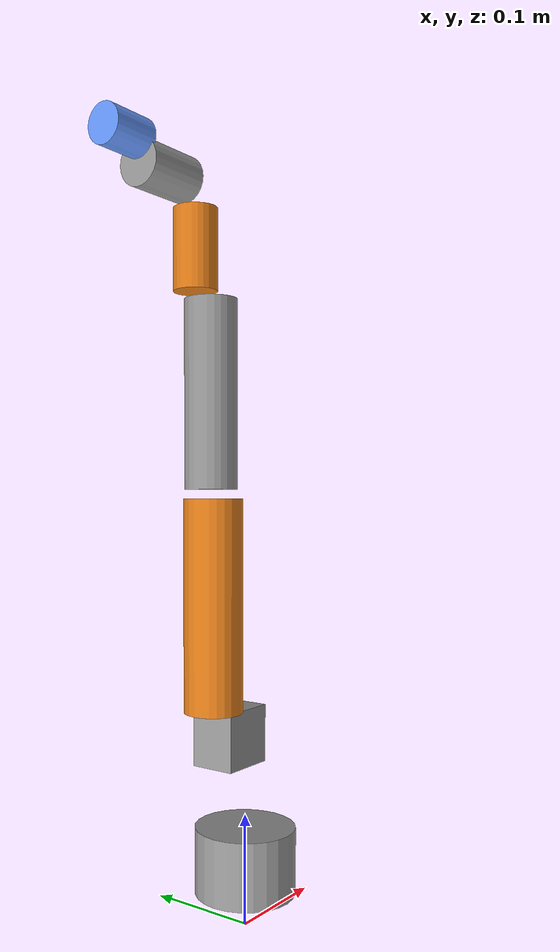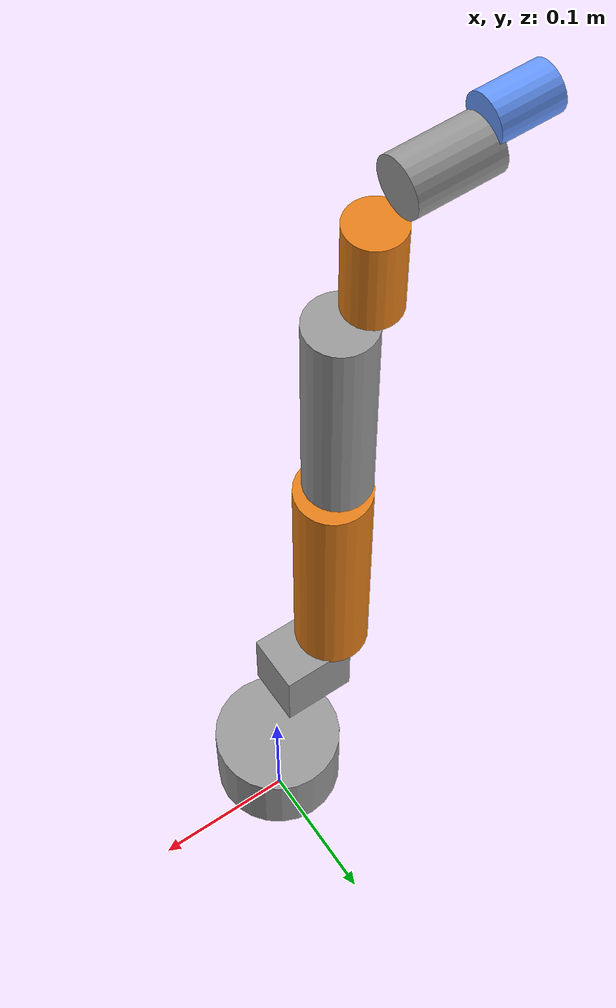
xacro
<?xml version="1.0" ?>
<robot name="me6_robot" xmlns:xacro="http://www.ros.org/wiki/xacro">

    <link name="world"/>
    <link name="dummy_link"/>
    <link name="base_link">
        <inertial>
            <origin xyz="-0.0240568795993814 0.00375533156407527 0.0319345452713943" rpy="0 0 0"/>
            <mass value="0.285212529609956"/>
            <inertia ixx="0.000396422919712692" ixy="-2.45771742761344E-06" ixz="-4.3086536609151E-05"
                     iyy="0.000694067773935387" iyz="-1.70368663919635E-06" izz="0.000881589559792122"/>
        </inertial>
        <visual>
            <origin xyz="0 0 0.03" rpy="0 0 0"/>
            <geometry>
                <cylinder radius="0.045" length="0.06"/>
            </geometry>
            <material name="grey">
                <color rgba="0.6 0.6 0.6 1"/>
            </material>
        </visual>
        <collision>
            <origin xyz="0 0 0" rpy="0 0 0"/>
            <geometry>
                <mesh filename="package://e6_description/meshes/me6/base_link.STL"/>
            </geometry>
        </collision>
    </link>

    <joint name="world_joint" type="fixed">
        <origin xyz="0 0 0.03" rpy="0 0 0"/>
        <parent link="world"/>
        <child link="dummy_link"/>
    </joint>
    <joint name="dummy_joint" type="fixed">
        <parent link="dummy_link"/>
        <child link="base_link"/>
    </joint>

    <link name="Link1">
        <inertial>
            <origin xyz="-0.0083034891135278 0.000169963422442479 0.0273090165667047" rpy="0 0 0"/>
            <mass value="0.0905534651015844"/>
            <inertia ixx="0.000126000179432565" ixy="3.82915686953423E-07" ixz="2.6110576023655E-05"
                     iyy="0.000106769415321957" iyz="-2.94192272889944E-07" izz="0.000110954758888466"/>
        </inertial>
        <visual>
            <origin xyz="-0.023 0 0.02" rpy="0 0 0"/>
            <geometry>
                <box size="0.05 0.04 0.05"/>
            </geometry>
            <material name="grey">
                <color rgba="0.6 0.6 0.6 1"/>
            </material>
        </visual>
        <collision>
            <origin xyz="0 0 0" rpy="0 0 0"/>
            <geometry>
                <mesh filename="package://e6_description/meshes/me6/Link1.STL"/>
            </geometry>
        </collision>
    </link>
    <joint name="joint1" type="revolute">
        <origin xyz="0 0 0.1268" rpy="0 0 0"/>
        <parent link="base_link"/>
        <child link="Link1"/>
        <axis xyz="0 0 1"/>
        <limit lower="-6.27" upper="6.27" effort="300" velocity="300"/>
    </joint>

    <link name="Link2">
        <inertial>
            <origin xyz="-3.08219150776858E-06 0.0879305908719406 0.0388340121175632" rpy="0 0 0"/>
            <mass value="0.262143169591665"/>
            <inertia ixx="0.00151705147157064" ixy="-9.05783800425971E-08" ixz="-2.30358806459891E-08"
                     iyy="0.000184651484640178" iyz="5.92489195475674E-06" izz="0.00160256161333827"/>
        </inertial>
        <visual>
            <origin xyz="0 0.094 0" rpy="1.5708 0 0"/>
            <geometry>
                <cylinder radius="0.025" length="0.18"/>
            </geometry>
            <material name="orange">
                <color rgba="0.9 0.5 0.1 1"/>
            </material>
        </visual>
        <collision>
            <origin xyz="0 0 0" rpy="0 0 0"/>
            <geometry>
                <mesh filename="package://e6_description/meshes/me6/Link2.STL"/>
            </geometry>
        </collision>
    </link>
    <joint name="joint2" type="revolute">
        <origin xyz="-0.046 0 0.04" rpy="1.5708 0 -1.5708"/>
        <parent link="Link1"/>
        <child link="Link2"/>
        <axis xyz="0 0 1"/>
        <limit lower="-2.356" upper="2.356" effort="300" velocity="300"/>
    </joint>

    <link name="Link3">
        <inertial>
            <origin xyz="0.000287552185448503 0.071655088852445 -0.0471165778156417" rpy="0 0 0"/>
            <mass value="0.165777554463868"/>
            <inertia ixx="0.000830428352662996" ixy="2.8181042521152E-06" ixz="-9.46588589577167E-07"
                     iyy="0.000136357822793152" iyz="3.34896030109504E-05" izz="0.000875008990596281"/>
        </inertial>
        <visual>
            <origin xyz="0 0.08 0" rpy="1.5708 0 0"/>
            <geometry>
                <cylinder radius="0.022" length="0.155"/>
            </geometry>
            <material name="grey">
                <color rgba="0.6 0.6 0.6 1"/>
            </material>
        </visual>
        <collision>
            <origin xyz="0 0 0" rpy="0 0 0"/>
            <geometry>
                <mesh filename="package://e6_description/meshes/me6/Link3.STL"/>
            </geometry>
        </collision>
    </link>
    <joint name="joint3" type="revolute">
        <origin xyz="0 0.18906 0.003" rpy="0 0 0"/>
        <parent link="Link2"/>
        <child link="Link3"/>
        <axis xyz="0 0 1"/>
        <limit lower="-2.6878" upper="2.6878" effort="300" velocity="300"/>
    </joint>

    <link name="Link4">
        <inertial>
            <origin xyz="4.09285774923343E-06 0.00868445353374203 0.0236778972827499" rpy="0 0 0"/>
            <mass value="0.0513325001478492"/>
            <inertia ixx="4.01013411471145E-05" ixy="-1.20578032972286E-09" ixz="-4.45580261969494E-09"
                     iyy="4.5290271173066E-05" iyz="-1.00105786014305E-05" izz="4.79740476320818E-05"/>
        </inertial>
        <visual>
            <origin xyz="0 0.033 0.015" rpy="1.5708 0 0"/>
            <geometry>
                <cylinder radius="0.018" length="0.065"/>
            </geometry>
            <material name="orange">
                <color rgba="0.9 0.5 0.1 1"/>
            </material>
        </visual>
        <collision>
            <origin xyz="0 0 0" rpy="0 0 0"/>
            <geometry>
                <mesh filename="package://e6_description/meshes/me6/Link4.STL"/>
            </geometry>
        </collision>
    </link>
    <joint name="joint4" type="revolute">
        <origin xyz="0 0.16 0.005" rpy="0 0 0"/>
        <parent link="Link3"/>
        <child link="Link4"/>
        <axis xyz="0 0 1"/>
        <limit lower="-2.7925" upper="2.7925" effort="300" velocity="300"/>
    </joint>

    <link name="Link5">
        <inertial>
            <origin xyz="0.0105483555263245 3.64597044475367E-06 0.0262055886148362" rpy="0 0 0"/>
            <mass value="0.0698692996111581"/>
            <inertia ixx="5.60115215664426E-05" ixy="-7.74590413803E-09" ixz="8.25739718196742E-06"
                     iyy="5.44754597177232E-05" iyz="2.95354323871408E-09" izz="6.26975970041226E-05"/>
        </inertial>
        <visual>
            <origin xyz="-0.023 0 0.017" rpy="0 1.5708 0"/>
            <geometry>
                <cylinder radius="0.018" length="0.055"/>
            </geometry>
            <material name="grey">
                <color rgba="0.6 0.6 0.6 1"/>
            </material>
        </visual>
        <collision>
            <origin xyz="0 0 0" rpy="0 0 0"/>
            <geometry>
                <mesh filename="package://e6_description/meshes/me6/Link5.STL"/>
            </geometry>
        </collision>
    </link>
    <joint name="joint5" type="revolute">
        <origin xyz="0 0.067 0.032" rpy="-1.5708 1.5708 0"/>
        <parent link="Link4"/>
        <child link="Link5"/>
        <axis xyz="0 0 1"/>
        <limit lower="-3.0194" upper="3.0194" effort="300" velocity="300"/>
    </joint>

    <link name="Link6">
        <inertial>
            <origin xyz="-9.26807198336826E-06 0.00202791129000202 0.0111078385958137" rpy="0 0 0"/>
            <mass value="0.0200378152167263"/>
            <inertia ixx="7.30357563767904E-06" ixy="2.93853237811271E-09" ixz="2.10157561923958E-10"
                     iyy="6.84457889267137E-06" iyz="-3.06988248779752E-08" izz="1.29091396053918E-05"/>
        </inertial>
        <visual>
            <origin xyz="0 0 0.02" rpy="0 0 0"/>
            <geometry>
                <cylinder radius="0.015" length="0.04"/>
            </geometry>
            <material name="blue_grey">
                <color rgba="0.4 0.6 1.0 1"/>
            </material>
        </visual>
        <collision>
            <origin xyz="0 0 0" rpy="0 0 0"/>
            <geometry>
                <mesh filename="package://e6_description/meshes/me6/Link6.STL"/>
            </geometry>
        </collision>
    </link>
    <joint name="joint6" type="revolute">
        <origin xyz="-0.047 0 0.034" rpy="1.5708 0 -1.5708"/>
        <parent link="Link5"/>
        <child link="Link6"/>
        <axis xyz="0 0 1"/>
        <limit lower="-6.27" upper="6.27" effort="300" velocity="300"/>
    </joint>

</robot>
